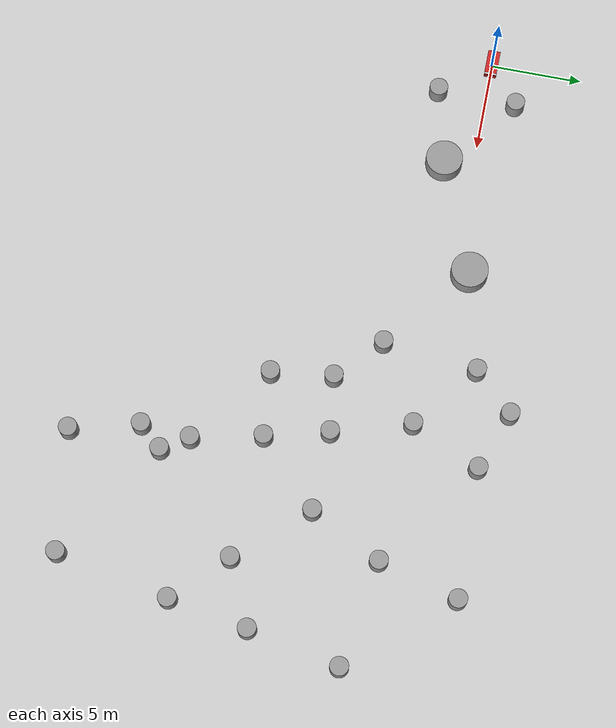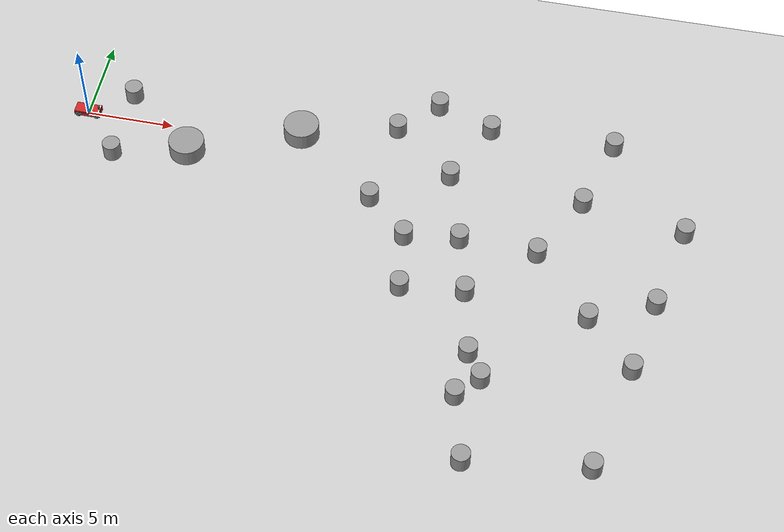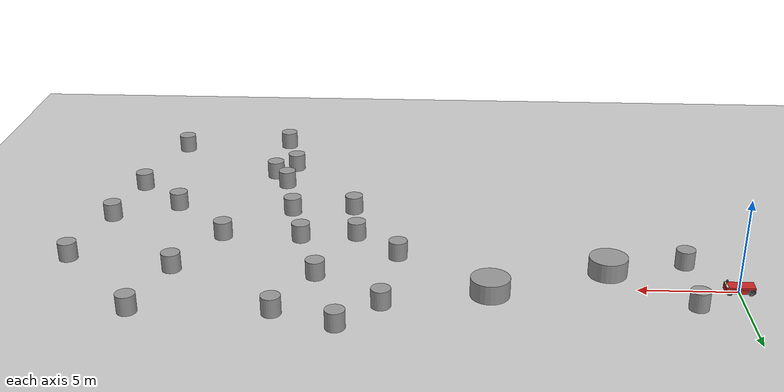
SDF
<sdf version="1.7">
 <world name="default">
  <light name="sun" type="directional">
   <pose>0 0 10 0 -0 0</pose>
   <diffuse>0.8 0.8 0.8 1</diffuse>
   <specular>0.2 0.2 0.2 1</specular>
   <attenuation>
    <range>1000</range>
    <constant>0.9</constant>
    <linear>0.01</linear>
    <quadratic>0.001</quadratic>
   </attenuation>
   <direction>-0.5 0.1 -0.9</direction>
   <spot><inner_angle>0</inner_angle><outer_angle>0</outer_angle><falloff>0</falloff></spot>
  </light>
  <model name="ground_plane">
   <static>1</static>
   <link name="link">
    <collision name="collision">
     <geometry><plane><normal>0 0 1</normal><size>100 100</size></plane></geometry>
     <surface><friction><ode><mu>100</mu><mu2>50</mu2></ode></friction></surface>
    </collision>
    <visual name="visual">
     <cast_shadows>0</cast_shadows>
     <geometry><plane><normal>0 0 1</normal><size>100 100</size></plane></geometry>
     <material>
      <script><uri>file://media/materials/scripts/gazebo.material</uri><name>Gazebo/Grey</name></script>
     </material>
    </visual>
   </link>
  </model>
  <gravity>0 0 -9.8</gravity>
  <magnetic_field>6e-06 2.3e-05 -4.2e-05</magnetic_field>
  <atmosphere type="adiabatic"/>
  <physics name="default_physics" default="0" type="ode">
   <max_step_size>0.001</max_step_size>
   <real_time_factor>1</real_time_factor>
   <real_time_update_rate>1000</real_time_update_rate>
  </physics>
  <scene><ambient>0.4 0.4 0.4 1</ambient><background>0.7 0.7 0.7 1</background><shadows>1</shadows></scene>
  <spherical_coordinates>
   <surface_model>EARTH_WGS84</surface_model>
   <latitude_deg>0</latitude_deg>
   <longitude_deg>0</longitude_deg>
   <elevation>0</elevation>
   <heading_deg>0</heading_deg>
  </spherical_coordinates>
  <model name="unit_cylinder_1">
   <pose>17.7165 2.15035 0.499997 2e-06 1e-06 0</pose>
   <link name="link">
    <inertial>
     <mass>1</mass>
     <inertia><ixx>0.145833</ixx><ixy>0</ixy><ixz>0</ixz><iyy>0.145833</iyy><iyz>0</iyz><izz>0.125</izz></inertia>
    </inertial>
    <collision name="collision">
     <geometry><cylinder><radius>0.5</radius><length>1</length></cylinder></geometry>
    </collision>
    <visual name="visual">
     <geometry><cylinder><radius>0.5</radius><length>1</length></cylinder></geometry>
     <material>
      <script><name>Gazebo/Grey</name><uri>file://media/materials/scripts/gazebo.material</uri></script>
     </material>
    </visual>
   </link>
  </model>
  <model name="unit_cylinder_1_clone">
   <pose>22.4882 -4.85282 0.499993 -0 -0 -0</pose>
   <link name="link">
    <inertial>
     <mass>1</mass>
     <inertia><ixx>0.145833</ixx><ixy>0</ixy><ixz>0</ixz><iyy>0.145833</iyy><iyz>0</iyz><izz>0.125</izz></inertia>
    </inertial>
    <collision name="collision">
     <geometry><cylinder><radius>0.5</radius><length>1</length></cylinder></geometry>
    </collision>
    <visual name="visual">
     <geometry><cylinder><radius>0.5</radius><length>1</length></cylinder></geometry>
     <material>
      <script><name>Gazebo/Grey</name><uri>file://media/materials/scripts/gazebo.material</uri></script>
     </material>
    </visual>
   </link>
  </model>
  <model name="unit_cylinder_1_clone_0">
   <pose>22.9425 3.1083 0.499997 3e-06 1e-06 -0</pose>
   <link name="link">
    <inertial>
     <mass>1</mass>
     <inertia><ixx>0.145833</ixx><ixy>0</ixy><ixz>0</ixz><iyy>0.145833</iyy><iyz>0</iyz><izz>0.125</izz></inertia>
    </inertial>
    <collision name="collision">
     <geometry><cylinder><radius>0.5</radius><length>1</length></cylinder></geometry>
    </collision>
    <visual name="visual">
     <geometry><cylinder><radius>0.5</radius><length>1</length></cylinder></geometry>
     <material>
      <script><name>Gazebo/Grey</name><uri>file://media/materials/scripts/gazebo.material</uri></script>
     </material>
    </visual>
   </link>
  </model>
  <model name="unit_cylinder_1_clone_1">
   <pose>2.2129 -2.66231 0.499991 -0 -0 -0</pose>
   <link name="link">
    <inertial>
     <mass>1</mass>
     <inertia><ixx>0.145833</ixx><ixy>0</ixy><ixz>0</ixz><iyy>0.145833</iyy><iyz>0</iyz><izz>0.125</izz></inertia>
    </inertial>
    <collision name="collision">
     <geometry><cylinder><radius>0.5</radius><length>1</length></cylinder></geometry>
    </collision>
    <visual name="visual">
     <geometry><cylinder><radius>0.5</radius><length>1</length></cylinder></geometry>
     <material>
      <script><name>Gazebo/Grey</name><uri>file://media/materials/scripts/gazebo.material</uri></script>
     </material>
    </visual>
   </link>
  </model>
  <model name="unit_cylinder_1_clone_2">
   <pose>2.29461 1.65197 0.499999 0 -0 3.07831</pose>
   <link name="link">
    <inertial>
     <mass>1</mass>
     <inertia><ixx>0.145833</ixx><ixy>0</ixy><ixz>0</ixz><iyy>0.145833</iyy><iyz>0</iyz><izz>0.125</izz></inertia>
    </inertial>
    <collision name="collision">
     <geometry><cylinder><radius>0.5</radius><length>1</length></cylinder></geometry>
    </collision>
    <visual name="visual">
     <geometry><cylinder><radius>0.5</radius><length>1</length></cylinder></geometry>
     <material>
      <script><name>Gazebo/Grey</name><uri>file://media/materials/scripts/gazebo.material</uri></script>
     </material>
    </visual>
   </link>
  </model>
  <model name="unit_cylinder_1_clone_3">
   <pose>17.12 -2.99322 0.499999 0 -0 0</pose>
   <link name="link">
    <inertial>
     <mass>1</mass>
     <inertia><ixx>0.145833</ixx><ixy>0</ixy><ixz>0</ixz><iyy>0.145833</iyy><iyz>0</iyz><izz>0.125</izz></inertia>
    </inertial>
    <collision name="collision">
     <geometry><cylinder><radius>0.5</radius><length>1</length></cylinder></geometry>
    </collision>
    <visual name="visual">
     <geometry><cylinder><radius>0.5</radius><length>1</length></cylinder></geometry>
     <material>
      <script><name>Gazebo/Grey</name><uri>file://media/materials/scripts/gazebo.material</uri></script>
     </material>
    </visual>
   </link>
  </model>
  <model name="unit_cylinder_1m">
   <link name="link">
    <inertial>
     <mass>1</mass>
     <inertia><ixx>0.145833</ixx><ixy>0</ixy><ixz>0</ixz><iyy>0.145833</iyy><iyz>0</iyz><izz>0.125</izz></inertia>
    </inertial>
    <visual name="visual">
     <geometry><cylinder><radius>1</radius><length>1</length></cylinder></geometry>
     <material>
      <script><name>Gazebo/Grey</name><uri>file://media/materials/scripts/gazebo.material</uri></script>
      <shader type="pixel"><normal_map>__default__</normal_map></shader>
      <ambient>0.3 0.3 0.3 1</ambient>
      <diffuse>0.7 0.7 0.7 1</diffuse>
      <specular>0.01 0.01 0.01 1</specular>
      <emissive>0 0 0 1</emissive>
     </material>
    </visual>
    <collision name="collision">
     <geometry><cylinder><radius>1</radius><length>1</length></cylinder></geometry>
     <surface>
      <friction>
       <ode><mu>1</mu><mu2>1</mu2><fdir1>0 0 0</fdir1><slip1>0</slip1><slip2>0</slip2></ode>
       <torsional>
        <coefficient>1</coefficient>
        <patch_radius>0</patch_radius>
        <surface_radius>0</surface_radius>
        <use_patch_radius>1</use_patch_radius>
        <ode><slip>0</slip></ode>
       </torsional>
      </friction>
      <bounce><restitution_coefficient>0</restitution_coefficient><threshold>1e+06</threshold></bounce>
      <contact>
       <collide_without_contact>0</collide_without_contact>
       <collide_without_contact_bitmask>1</collide_without_contact_bitmask>
       <collide_bitmask>1</collide_bitmask>
       <ode>
        <soft_cfm>0</soft_cfm>
        <soft_erp>0.2</soft_erp>
        <kp>1e+13</kp>
        <kd>1</kd>
        <max_vel>0.01</max_vel>
        <min_depth>0</min_depth>
       </ode>
       <bullet>
        <split_impulse>1</split_impulse>
        <split_impulse_penetration_threshold>-0.01</split_impulse_penetration_threshold>
        <soft_cfm>0</soft_cfm>
        <soft_erp>0.2</soft_erp>
        <kp>1e+13</kp>
        <kd>1</kd>
       </bullet>
      </contact>
     </surface>
    </collision>
   </link>
   <static>0</static>
   <pose>12.3833 0.825448 0.499995 -5e-06 5e-06 0.000117</pose>
  </model>
  <model name="unit_cylinder_1m_clone">
   <link name="link">
    <inertial>
     <mass>1</mass>
     <inertia><ixx>0.145833</ixx><ixy>0</ixy><ixz>0</ixz><iyy>0.145833</iyy><iyz>0</iyz><izz>0.125</izz></inertia>
    </inertial>
    <visual name="visual">
     <geometry><cylinder><radius>1</radius><length>1</length></cylinder></geometry>
     <material>
      <script><name>Gazebo/Grey</name><uri>file://media/materials/scripts/gazebo.material</uri></script>
      <shader type="pixel"><normal_map>__default__</normal_map></shader>
      <ambient>0.3 0.3 0.3 1</ambient>
      <diffuse>0.7 0.7 0.7 1</diffuse>
      <specular>0.01 0.01 0.01 1</specular>
      <emissive>0 0 0 1</emissive>
     </material>
    </visual>
    <collision name="collision">
     <geometry><cylinder><radius>1</radius><length>1</length></cylinder></geometry>
     <surface>
      <friction>
       <ode><mu>1</mu><mu2>1</mu2><fdir1>0 0 0</fdir1><slip1>0</slip1><slip2>0</slip2></ode>
       <torsional>
        <coefficient>1</coefficient>
        <patch_radius>0</patch_radius>
        <surface_radius>0</surface_radius>
        <use_patch_radius>1</use_patch_radius>
        <ode><slip>0</slip></ode>
       </torsional>
      </friction>
      <bounce><restitution_coefficient>0</restitution_coefficient><threshold>1e+06</threshold></bounce>
      <contact>
       <collide_without_contact>0</collide_without_contact>
       <collide_without_contact_bitmask>1</collide_without_contact_bitmask>
       <collide_bitmask>1</collide_bitmask>
       <ode>
        <soft_cfm>0</soft_cfm>
        <soft_erp>0.2</soft_erp>
        <kp>1e+13</kp>
        <kd>1</kd>
        <max_vel>0.01</max_vel>
        <min_depth>0</min_depth>
       </ode>
       <bullet>
        <split_impulse>1</split_impulse>
        <split_impulse_penetration_threshold>-0.01</split_impulse_penetration_threshold>
        <soft_cfm>0</soft_cfm>
        <soft_erp>0.2</soft_erp>
        <kp>1e+13</kp>
        <kd>1</kd>
       </bullet>
      </contact>
     </surface>
    </collision>
   </link>
   <static>0</static>
   <pose>6.30645 -1.63267 0.499994 6e-06 -7e-06 0.065546</pose>
  </model>
  <model name="mobile_base">
   <link name="simulation_car_center">
    <inertial>
     <pose>0.010175 0 0.010123 0 -0 0</pose>
     <mass>973</mass>
     <inertia>
      <ixx>32.4325</ixx>
      <ixy>0.01</ixy>
      <ixz>-6.39078</ixz>
      <iyy>114.856</iyy>
      <iyz>0</iyz>
      <izz>124.473</izz>
     </inertia>
    </inertial>
    <collision name="simulation_car_center_fixed_joint_lump__base_1_collision">
     <pose>0 0 0.215 0 -0 0</pose>
     <geometry><box><size>1.3 0.4 0.23</size></box></geometry>
    </collision>
    <collision name="simulation_car_center_fixed_joint_lump__gazebo_camera_link_collision_1">
     <pose>0.66 0 0.7 3.14159 1.57079 3.14159</pose>
     <geometry><cylinder><length>0.08</length><radius>0.015</radius></cylinder></geometry>
    </collision>
    <collision name="simulation_car_center_fixed_joint_lump__rsliadr_middle_collision_2">
     <pose>0.66 0 0.635 0 -0 0</pose>
     <geometry><cylinder><length>0.06</length><radius>0.06</radius></cylinder></geometry>
    </collision>
    <collision name="simulation_car_center_fixed_joint_lump__lidar_top_collision_3">
     <pose>0.66 0 0.67 0 -0 0</pose>
     <geometry><cylinder><length>0.01</length><radius>0.06</radius></cylinder></geometry>
    </collision>
    <collision name="simulation_car_center_fixed_joint_lump__lidar_down_collision_4">
     <pose>0.66 0 0.6 0 -0 0</pose>
     <geometry><cylinder><length>0.01</length><radius>0.06</radius></cylinder></geometry>
    </collision>
    <visual name="simulation_car_center_visual">
     <pose>0 0 0.215 0 -0 0</pose>
     <geometry><box><size>0.68 0.67 0.23</size></box></geometry>
     <material>
      <script><name>Gazebo/Red</name><uri>file://media/materials/scripts/gazebo.material</uri></script>
     </material>
    </visual>
    <visual name="simulation_car_center_visual_1">
     <pose>0.53 0 0.215 0 -0 0</pose>
     <geometry><box><size>0.38 0.35 0.23</size></box></geometry>
     <material>
      <script><name>Gazebo/Red</name><uri>file://media/materials/scripts/gazebo.material</uri></script>
     </material>
    </visual>
    <visual name="simulation_car_center_visual_2">
     <pose>-0.53 0 0.215 0 -0 0</pose>
     <geometry><box><size>0.38 0.35 0.23</size></box></geometry>
     <material>
      <script><name>Gazebo/Red</name><uri>file://media/materials/scripts/gazebo.material</uri></script>
     </material>
    </visual>
    <visual name="simulation_car_center_visual_3">
     <pose>-0.725 0 0.215 0 -0 0</pose>
     <geometry><box><size>0.01 0.67 0.23</size></box></geometry>
     <material>
      <script><name>Gazebo/Red</name><uri>file://media/materials/scripts/gazebo.material</uri></script>
     </material>
    </visual>
    <visual name="simulation_car_center_visual_4">
     <pose>-0.725 0 0.215 0 -0 0</pose>
     <geometry><box><size>0.01 0.67 0.23</size></box></geometry>
     <material>
      <script><name>Gazebo/Red</name><uri>file://media/materials/scripts/gazebo.material</uri></script>
     </material>
    </visual>
    <visual name="simulation_car_center_visual_5">
     <pose>0 0 0.38 0 -0 0</pose>
     <geometry><box><size>1.46 0.67 0.1</size></box></geometry>
     <material>
      <script><name>Gazebo/Red</name><uri>file://media/materials/scripts/gazebo.material</uri></script>
     </material>
    </visual>
    <visual name="simulation_car_center_visual_6">
     <pose>0.725 0 0.215 0 -0 0</pose>
     <geometry><box><size>0.01 0.67 0.23</size></box></geometry>
     <material>
      <script><name>Gazebo/Red</name><uri>file://media/materials/scripts/gazebo.material</uri></script>
     </material>
    </visual>
    <visual name="simulation_car_center_fixed_joint_lump__gazebo_camera_link_visual_7">
     <pose>0.66 0 0.7 3.14159 1.57079 3.14159</pose>
     <geometry><cylinder><length>0.08</length><radius>0.015</radius></cylinder></geometry>
     <material>
      <script><name>Gazebo/DarkGrey</name><uri>file://media/materials/scripts/gazebo.material</uri></script>
     </material>
    </visual>
    <visual name="simulation_car_center_fixed_joint_lump__gazebo_lidar_visual_8">
     <pose>0.66 0 0.635 0 -0 0</pose>
     <geometry><cylinder><length>0.06</length><radius>0.06</radius></cylinder></geometry>
     <material>
      <script><name>Gazebo/Blue</name><uri>file://media/materials/scripts/gazebo.material</uri></script>
     </material>
    </visual>
    <visual name="simulation_car_center_fixed_joint_lump__lidar_top_base_visual_9">
     <pose>0.66 0 0.67 0 -0 0</pose>
     <geometry><cylinder><length>0.01</length><radius>0.06</radius></cylinder></geometry>
     <material>
      <script><name>Gazebo/Grey</name><uri>file://media/materials/scripts/gazebo.material</uri></script>
     </material>
    </visual>
    <visual name="simulation_car_center_fixed_joint_lump__lidar_top_base_visual_10">
     <pose>0.66 0 0.6 0 -0 0</pose>
     <geometry><cylinder><length>0.01</length><radius>0.06</radius></cylinder></geometry>
     <material>
      <script><name>Gazebo/Grey</name><uri>file://media/materials/scripts/gazebo.material</uri></script>
     </material>
    </visual>
    <visual name="simulation_car_center_fixed_joint_lump__sensor_link_visual_11">
     <pose>0.66 0 0.57 0 -0 0</pose>
     <geometry><box><size>0.05 0.06 0.28</size></box></geometry>
     <material>
      <script><name>Gazebo/Yellow</name><uri>file://media/materials/scripts/gazebo.material</uri></script>
     </material>
    </visual>
    <visual name="simulation_car_center_fixed_joint_lump__show_front_link_visual_12">
     <pose>0.66 0 0.44 0 -0 0</pose>
     <geometry><box><size>0.1 0.67 0.02</size></box></geometry>
     <material>
      <script><name>Gazebo/White</name><uri>file://media/materials/scripts/gazebo.material</uri></script>
     </material>
    </visual>
    <sensor name="gazebo_ros_head_hokuyo_sensor" type="gpu_ray">
     <visualize>0</visualize>
     <update_rate>20</update_rate>
     <ray>
      <scan>
       <horizontal>
        <samples>2880</samples>
        <resolution>1</resolution>
        <min_angle>-3.14159</min_angle>
        <max_angle>3.14159</max_angle>
       </horizontal>
       <vertical>
        <samples>32</samples>
        <resolution>1</resolution>
        <min_angle>-0.436332</min_angle>
        <max_angle>0.261799</max_angle>
       </vertical>
      </scan>
      <range><min>0.1</min><max>130</max><resolution>0.001</resolution></range>
      <noise><type>gaussian</type><mean>0</mean><stddev>0</stddev></noise>
     </ray>
     <plugin name="gazebo_ros_head_hokuyo_controller" filename="libgazebo_ros_velodyne_gpu_laser.so">
      <topicName>velodyne_points</topicName>
      <frameName>velodyne</frameName>
      <robotNamespace>/</robotNamespace>
     </plugin>
     <pose>0.66 0 0.635 0 -0 0</pose>
    </sensor>
   </link>
   <joint name="front_left_steering_joint" type="revolute">
    <pose relative_to="simulation_car_center">0.53 0.31 0.16 0 -0 0</pose>
    <parent>simulation_car_center</parent>
    <child>front_left_steering_link</child>
    <axis>
     <xyz>0 0 1</xyz>
     <limit><lower>-0.8</lower><upper>0.8</upper><effort>1e+06</effort><velocity>10000</velocity></limit>
     <dynamics>
      <damping>10</damping>
      <friction>0</friction>
      <spring_reference>0</spring_reference>
      <spring_stiffness>0</spring_stiffness>
     </dynamics>
    </axis>
   </joint>
   <link name="front_left_steering_link">
    <pose relative_to="front_left_steering_joint">0 0 0 0 -0 0</pose>
    <inertial>
     <mass>5</mass>
     <inertia><ixx>0</ixx><ixy>0</ixy><ixz>0</ixz><iyy>0</iyy><iyz>0</iyz><izz>0</izz></inertia>
    </inertial>
    <visual name="front_left_steering_link_visual">
     <pose>0 0 0 1.5708 -0 0</pose>
     <geometry><cylinder><length>0.01</length><radius>0.05</radius></cylinder></geometry>
    </visual>
   </link>
   <joint name="front_left_wheel_joint" type="revolute">
    <pose relative_to="front_left_steering_link">0 0 0 0 -0 0</pose>
    <parent>front_left_steering_link</parent>
    <child>front_left_wheel_link</child>
    <axis>
     <xyz>0 1 0</xyz>
     <limit><effort>1e+06</effort><velocity>10000</velocity><lower>-1e+16</lower><upper>1e+16</upper></limit>
     <dynamics>
      <damping>0.1</damping>
      <friction>0</friction>
      <spring_reference>0</spring_reference>
      <spring_stiffness>0</spring_stiffness>
     </dynamics>
    </axis>
   </joint>
   <link name="front_left_wheel_link">
    <pose relative_to="front_left_wheel_joint">0 0 0 0 -0 0</pose>
    <inertial>
     <mass>10</mass>
     <inertia><ixx>0</ixx><ixy>0</ixy><ixz>0</ixz><iyy>0</iyy><iyz>0</iyz><izz>0</izz></inertia>
    </inertial>
    <collision name="front_left_wheel_link_collision">
     <pose>0 0 0 1.5708 -0 0</pose>
     <geometry><cylinder><length>0.05</length><radius>0.16</radius></cylinder></geometry>
     <surface>
      <contact><ode><kp>1e+08</kp><kd>1</kd><max_vel>100</max_vel><min_depth>0</min_depth></ode></contact>
      <friction><ode><mu>1e+07</mu><mu2>1e+07</mu2></ode></friction>
     </surface>
    </collision>
    <visual name="front_left_wheel_link_visual">
     <pose>0 0 0 0 -0 1.5708</pose>
     <geometry>
      <mesh>
       <scale>1 1 1</scale>
       <uri>/home/zwh/plan/zwh/op_plannersrc/src/trajectory_planning/simulation_env/car_model/meshes/wheel.dae</uri>
      </mesh>
     </geometry>
    </visual>
   </link>
   <joint name="front_right_steering_joint" type="revolute">
    <pose relative_to="simulation_car_center">0.53 -0.31 0.16 0 -0 0</pose>
    <parent>simulation_car_center</parent>
    <child>front_right_steering_link</child>
    <axis>
     <xyz>0 0 1</xyz>
     <limit><lower>-0.8</lower><upper>0.8</upper><effort>1e+06</effort><velocity>10000</velocity></limit>
     <dynamics>
      <damping>10</damping>
      <friction>0</friction>
      <spring_reference>0</spring_reference>
      <spring_stiffness>0</spring_stiffness>
     </dynamics>
    </axis>
   </joint>
   <link name="front_right_steering_link">
    <pose relative_to="front_right_steering_joint">0 0 0 0 -0 0</pose>
    <inertial>
     <mass>5</mass>
     <inertia><ixx>0</ixx><ixy>0</ixy><ixz>0</ixz><iyy>0</iyy><iyz>0</iyz><izz>0</izz></inertia>
    </inertial>
    <visual name="front_right_steering_link_visual">
     <pose>0 0 0 1.5708 -0 0</pose>
     <geometry><cylinder><length>0.01</length><radius>0.05</radius></cylinder></geometry>
    </visual>
   </link>
   <joint name="front_right_wheel_joint" type="revolute">
    <pose relative_to="front_right_steering_link">0 0 0 0 -0 0</pose>
    <parent>front_right_steering_link</parent>
    <child>front_right_wheel_link</child>
    <axis>
     <xyz>0 1 0</xyz>
     <limit><effort>1e+06</effort><velocity>10000</velocity><lower>-1e+16</lower><upper>1e+16</upper></limit>
     <dynamics>
      <damping>0.1</damping>
      <friction>0</friction>
      <spring_reference>0</spring_reference>
      <spring_stiffness>0</spring_stiffness>
     </dynamics>
    </axis>
   </joint>
   <link name="front_right_wheel_link">
    <pose relative_to="front_right_wheel_joint">0 0 0 0 -0 0</pose>
    <inertial>
     <mass>10</mass>
     <inertia><ixx>0</ixx><ixy>0</ixy><ixz>0</ixz><iyy>0</iyy><iyz>0</iyz><izz>0</izz></inertia>
    </inertial>
    <collision name="front_right_wheel_link_collision">
     <pose>0 0 0 1.5708 -0 0</pose>
     <geometry><cylinder><length>0.05</length><radius>0.16</radius></cylinder></geometry>
     <surface>
      <contact><ode><kp>1e+08</kp><kd>1</kd><max_vel>100</max_vel><min_depth>0</min_depth></ode></contact>
      <friction><ode><mu>1e+07</mu><mu2>1e+07</mu2></ode></friction>
     </surface>
    </collision>
    <visual name="front_right_wheel_link_visual">
     <pose>0 0 0 0 0 -1.5708</pose>
     <geometry>
      <mesh>
       <scale>1 1 1</scale>
       <uri>/home/zwh/plan/zwh/op_plannersrc/src/trajectory_planning/simulation_env/car_model/meshes/wheel.dae</uri>
      </mesh>
     </geometry>
    </visual>
   </link>
   <joint name="rear_left_steering_joint" type="revolute">
    <pose relative_to="simulation_car_center">-0.53 0.31 0.16 0 -0 0</pose>
    <parent>simulation_car_center</parent>
    <child>rear_left_steering_link</child>
    <axis>
     <xyz>0 0 1</xyz>
     <limit><lower>-0.8</lower><upper>0.8</upper><effort>1e+06</effort><velocity>10000</velocity></limit>
     <dynamics>
      <damping>10</damping>
      <friction>0</friction>
      <spring_reference>0</spring_reference>
      <spring_stiffness>0</spring_stiffness>
     </dynamics>
    </axis>
   </joint>
   <link name="rear_left_steering_link">
    <pose relative_to="rear_left_steering_joint">0 0 0 0 -0 0</pose>
    <inertial>
     <mass>5</mass>
     <inertia><ixx>0</ixx><ixy>0</ixy><ixz>0</ixz><iyy>0</iyy><iyz>0</iyz><izz>0</izz></inertia>
    </inertial>
    <visual name="rear_left_steering_link_visual">
     <pose>0 0 0 1.5708 -0 0</pose>
     <geometry><cylinder><length>0.01</length><radius>0.05</radius></cylinder></geometry>
    </visual>
   </link>
   <joint name="rear_left_wheel_joint" type="revolute">
    <pose relative_to="rear_left_steering_link">0 0 0 0 -0 0</pose>
    <parent>rear_left_steering_link</parent>
    <child>rear_left_wheel_link</child>
    <axis>
     <xyz>0 1 0</xyz>
     <limit><effort>1e+06</effort><velocity>10000</velocity><lower>-1e+16</lower><upper>1e+16</upper></limit>
     <dynamics>
      <damping>0.1</damping>
      <friction>0</friction>
      <spring_reference>0</spring_reference>
      <spring_stiffness>0</spring_stiffness>
     </dynamics>
    </axis>
   </joint>
   <link name="rear_left_wheel_link">
    <pose relative_to="rear_left_wheel_joint">0 0 0 0 -0 0</pose>
    <inertial>
     <mass>10</mass>
     <inertia><ixx>0</ixx><ixy>0</ixy><ixz>0</ixz><iyy>0</iyy><iyz>0</iyz><izz>0</izz></inertia>
    </inertial>
    <collision name="rear_left_wheel_link_collision">
     <pose>0 0 0 1.5708 -0 0</pose>
     <geometry><cylinder><length>0.05</length><radius>0.16</radius></cylinder></geometry>
     <surface>
      <contact><ode><kp>1e+08</kp><kd>1</kd><max_vel>100</max_vel><min_depth>0</min_depth></ode></contact>
      <friction><ode><mu>1e+07</mu><mu2>1e+07</mu2></ode></friction>
     </surface>
    </collision>
    <visual name="rear_left_wheel_link_visual">
     <pose>0 0 0 0 -0 1.5708</pose>
     <geometry>
      <mesh>
       <scale>1 1 1</scale>
       <uri>/home/zwh/plan/zwh/op_plannersrc/src/trajectory_planning/simulation_env/car_model/meshes/wheel.dae</uri>
      </mesh>
     </geometry>
    </visual>
   </link>
   <joint name="rear_right_steering_joint" type="revolute">
    <pose relative_to="simulation_car_center">-0.53 -0.31 0.16 0 -0 0</pose>
    <parent>simulation_car_center</parent>
    <child>rear_right_steering_link</child>
    <axis>
     <xyz>0 0 1</xyz>
     <limit><lower>-0.8</lower><upper>0.8</upper><effort>1e+06</effort><velocity>10000</velocity></limit>
     <dynamics>
      <damping>10</damping>
      <friction>0</friction>
      <spring_reference>0</spring_reference>
      <spring_stiffness>0</spring_stiffness>
     </dynamics>
    </axis>
   </joint>
   <link name="rear_right_steering_link">
    <pose relative_to="rear_right_steering_joint">0 0 0 0 -0 0</pose>
    <inertial>
     <mass>5</mass>
     <inertia><ixx>0</ixx><ixy>0</ixy><ixz>0</ixz><iyy>0</iyy><iyz>0</iyz><izz>0</izz></inertia>
    </inertial>
    <visual name="rear_right_steering_link_visual">
     <pose>0 0 0 1.5708 -0 0</pose>
     <geometry><cylinder><length>0.01</length><radius>0.05</radius></cylinder></geometry>
    </visual>
   </link>
   <joint name="rear_right_wheel_joint" type="revolute">
    <pose relative_to="rear_right_steering_link">0 0 0 0 -0 0</pose>
    <parent>rear_right_steering_link</parent>
    <child>rear_right_wheel_link</child>
    <axis>
     <xyz>0 1 0</xyz>
     <limit><effort>1e+06</effort><velocity>10000</velocity><lower>-1e+16</lower><upper>1e+16</upper></limit>
     <dynamics>
      <damping>0.1</damping>
      <friction>0</friction>
      <spring_reference>0</spring_reference>
      <spring_stiffness>0</spring_stiffness>
     </dynamics>
    </axis>
   </joint>
   <link name="rear_right_wheel_link">
    <pose relative_to="rear_right_wheel_joint">0 0 0 0 -0 0</pose>
    <inertial>
     <mass>10</mass>
     <inertia><ixx>0</ixx><ixy>0</ixy><ixz>0</ixz><iyy>0</iyy><iyz>0</iyz><izz>0</izz></inertia>
    </inertial>
    <collision name="rear_right_wheel_link_collision">
     <pose>0 0 0 1.5708 -0 0</pose>
     <geometry><cylinder><length>0.05</length><radius>0.16</radius></cylinder></geometry>
     <surface>
      <contact><ode><kp>1e+08</kp><kd>1</kd><max_vel>100</max_vel><min_depth>0</min_depth></ode></contact>
      <friction><ode><mu>1e+07</mu><mu2>1e+07</mu2></ode></friction>
     </surface>
    </collision>
    <visual name="rear_right_wheel_link_visual">
     <pose>0 0 0 0 0 -1.5708</pose>
     <geometry>
      <mesh>
       <scale>1 1 1</scale>
       <uri>/home/zwh/plan/zwh/op_plannersrc/src/trajectory_planning/simulation_env/car_model/meshes/wheel.dae</uri>
      </mesh>
     </geometry>
    </visual>
   </link>
   <plugin name="gazebo_ros_control" filename="libgazebo_ros_control.so">
    <robotNamespace>/mobile_base</robotNamespace>
    <robotParam>robot_description</robotParam>
    <robotSimType>gazebo_ros_control/DefaultRobotHWSim</robotSimType>
    <legacyModeNS>1</legacyModeNS>
   </plugin>
   <plugin name="joint_state_publisher" filename="libgazebo_ros_joint_state_publisher.so">
    <jointName>rear_left_wheel_joint, rear_right_wheel_joint, front_left_steering_joint, front_right_steering_joint, front_right_wheel_joint, front_left_wheel_joint, rear_right_steering_joint, rear_left_steering_joint</jointName>
    <updateRate>50.0</updateRate>
    <robotNamespace>/mobile_base</robotNamespace>
    <alwaysOn>1</alwaysOn>
    <legacyModeNS>1</legacyModeNS>
   </plugin>
   <frame name="camera_joint" attached_to="simulation_car_center"><pose>0.66 0 0.7 0 -0 0</pose></frame>
   <frame name="gazebo_camera_link" attached_to="camera_joint"/>
   <frame name="inertial_joint" attached_to="simulation_car_center"/>
   <frame name="main_mass" attached_to="inertial_joint"/>
   <frame name="lidar_top_base_joint" attached_to="gazebo_lidar"/>
   <frame name="lidar_top_base" attached_to="lidar_top_base_joint"/>
   <frame name="lidar_joint" attached_to="simulation_car_center"><pose>0.66 0 0.635 0 -0 0</pose></frame>
   <frame name="gazebo_lidar" attached_to="lidar_joint"/>
   <frame name="sensor_base_joint" attached_to="simulation_car_center"/>
   <frame name="sensor_link" attached_to="sensor_base_joint"/>
   <frame name="show_front_joint" attached_to="simulation_car_center"/>
   <frame name="show_front_link" attached_to="show_front_joint"/>
   <pose>0.005003 -0.000756 -1.7e-05 -1e-06 0 -0.003925</pose>
  </model>
  <model name="unit_cylinder">
   <pose>21.2377 -0.648915 0.499994 -3e-06 -1e-06 -0</pose>
   <link name="link">
    <inertial>
     <mass>1</mass>
     <inertia><ixx>0.145833</ixx><ixy>0</ixy><ixz>0</ixz><iyy>0.145833</iyy><iyz>0</iyz><izz>0.125</izz></inertia>
    </inertial>
    <collision name="collision">
     <geometry><cylinder><radius>0.5</radius><length>1</length></cylinder></geometry>
    </collision>
    <visual name="visual">
     <geometry><cylinder><radius>0.5</radius><length>1</length></cylinder></geometry>
     <material>
      <script><name>Gazebo/Grey</name><uri>file://media/materials/scripts/gazebo.material</uri></script>
     </material>
    </visual>
   </link>
  </model>
  <model name="unit_cylinder_0">
   <pose>29.9312 3.25197 0.499992 -0 -0 -0</pose>
   <link name="link">
    <inertial>
     <mass>1</mass>
     <inertia><ixx>0.145833</ixx><ixy>0</ixy><ixz>0</ixz><iyy>0.145833</iyy><iyz>0</iyz><izz>0.125</izz></inertia>
    </inertial>
    <collision name="collision">
     <geometry><cylinder><radius>0.5</radius><length>1</length></cylinder></geometry>
    </collision>
    <visual name="visual">
     <geometry><cylinder><radius>0.5</radius><length>1</length></cylinder></geometry>
     <material>
      <script><name>Gazebo/Grey</name><uri>file://media/materials/scripts/gazebo.material</uri></script>
     </material>
    </visual>
   </link>
  </model>
  <model name="unit_cylinder_2">
   <pose>30.014 -8.64443 0.499993 -4e-06 -1e-06 0</pose>
   <link name="link">
    <inertial>
     <mass>1</mass>
     <inertia><ixx>0.145833</ixx><ixy>0</ixy><ixz>0</ixz><iyy>0.145833</iyy><iyz>0</iyz><izz>0.125</izz></inertia>
    </inertial>
    <collision name="collision">
     <geometry><cylinder><radius>0.5</radius><length>1</length></cylinder></geometry>
    </collision>
    <visual name="visual">
     <geometry><cylinder><radius>0.5</radius><length>1</length></cylinder></geometry>
     <material>
      <script><name>Gazebo/Grey</name><uri>file://media/materials/scripts/gazebo.material</uri></script>
     </material>
    </visual>
   </link>
  </model>
  <model name="unit_cylinder_3">
   <pose>32.6853 -11.3644 0.499993 -3e-06 -1e-06 -0</pose>
   <link name="link">
    <inertial>
     <mass>1</mass>
     <inertia><ixx>0.145833</ixx><ixy>0</ixy><ixz>0</ixz><iyy>0.145833</iyy><iyz>0</iyz><izz>0.125</izz></inertia>
    </inertial>
    <collision name="collision">
     <geometry><cylinder><radius>0.5</radius><length>1</length></cylinder></geometry>
    </collision>
    <visual name="visual">
     <geometry><cylinder><radius>0.5</radius><length>1</length></cylinder></geometry>
     <material>
      <script><name>Gazebo/Grey</name><uri>file://media/materials/scripts/gazebo.material</uri></script>
     </material>
    </visual>
   </link>
  </model>
  <model name="unit_cylinder_4">
   <pose>25.079 -13.4509 0.499994 -4e-06 -3e-06 -0</pose>
   <link name="link">
    <inertial>
     <mass>1</mass>
     <inertia><ixx>0.145833</ixx><ixy>0</ixy><ixz>0</ixz><iyy>0.145833</iyy><iyz>0</iyz><izz>0.125</izz></inertia>
    </inertial>
    <collision name="collision">
     <geometry><cylinder><radius>0.5</radius><length>1</length></cylinder></geometry>
    </collision>
    <visual name="visual">
     <geometry><cylinder><radius>0.5</radius><length>1</length></cylinder></geometry>
     <material>
      <script><name>Gazebo/Grey</name><uri>file://media/materials/scripts/gazebo.material</uri></script>
     </material>
    </visual>
   </link>
  </model>
  <model name="unit_cylinder_5">
   <pose>31.4217 -17.5252 0.499998 3e-06 -2e-06 0</pose>
   <link name="link">
    <inertial>
     <mass>1</mass>
     <inertia><ixx>0.145833</ixx><ixy>0</ixy><ixz>0</ixz><iyy>0.145833</iyy><iyz>0</iyz><izz>0.125</izz></inertia>
    </inertial>
    <collision name="collision">
     <geometry><cylinder><radius>0.5</radius><length>1</length></cylinder></geometry>
    </collision>
    <visual name="visual">
     <geometry><cylinder><radius>0.5</radius><length>1</length></cylinder></geometry>
     <material>
      <script><name>Gazebo/Grey</name><uri>file://media/materials/scripts/gazebo.material</uri></script>
     </material>
    </visual>
   </link>
  </model>
  <model name="unit_cylinder_6">
   <pose>23.3713 -8.23906 0.499994 4e-06 -2e-06 0</pose>
   <link name="link">
    <inertial>
     <mass>1</mass>
     <inertia><ixx>0.145833</ixx><ixy>0</ixy><ixz>0</ixz><iyy>0.145833</iyy><iyz>0</iyz><izz>0.125</izz></inertia>
    </inertial>
    <collision name="collision">
     <geometry><cylinder><radius>0.5</radius><length>1</length></cylinder></geometry>
    </collision>
    <visual name="visual">
     <geometry><cylinder><radius>0.5</radius><length>1</length></cylinder></geometry>
     <material>
      <script><name>Gazebo/Grey</name><uri>file://media/materials/scripts/gazebo.material</uri></script>
     </material>
    </visual>
   </link>
  </model>
  <model name="unit_cylinder_7">
   <pose>24.1934 -12.0138 0.499994 4e-06 -2e-06 0</pose>
   <link name="link">
    <inertial>
     <mass>1</mass>
     <inertia><ixx>0.145833</ixx><ixy>0</ixy><ixz>0</ixz><iyy>0.145833</iyy><iyz>0</iyz><izz>0.125</izz></inertia>
    </inertial>
    <collision name="collision">
     <geometry><cylinder><radius>0.5</radius><length>1</length></cylinder></geometry>
    </collision>
    <visual name="visual">
     <geometry><cylinder><radius>0.5</radius><length>1</length></cylinder></geometry>
     <material>
      <script><name>Gazebo/Grey</name><uri>file://media/materials/scripts/gazebo.material</uri></script>
     </material>
    </visual>
   </link>
  </model>
  <model name="unit_cylinder_8">
   <pose>23.9566 -14.6869 0.499994 4e-06 -2e-06 0</pose>
   <link name="link">
    <inertial>
     <mass>1</mass>
     <inertia><ixx>0.145833</ixx><ixy>0</ixy><ixz>0</ixz><iyy>0.145833</iyy><iyz>0</iyz><izz>0.125</izz></inertia>
    </inertial>
    <collision name="collision">
     <geometry><cylinder><radius>0.5</radius><length>1</length></cylinder></geometry>
    </collision>
    <visual name="visual">
     <geometry><cylinder><radius>0.5</radius><length>1</length></cylinder></geometry>
     <material>
      <script><name>Gazebo/Grey</name><uri>file://media/materials/scripts/gazebo.material</uri></script>
     </material>
    </visual>
   </link>
  </model>
  <model name="unit_cylinder_9">
   <pose>24.9131 -18.3887 0.499992 -3e-06 -4e-06 -0</pose>
   <link name="link">
    <inertial>
     <mass>1</mass>
     <inertia><ixx>0.145833</ixx><ixy>0</ixy><ixz>0</ixz><iyy>0.145833</iyy><iyz>0</iyz><izz>0.125</izz></inertia>
    </inertial>
    <collision name="collision">
     <geometry><cylinder><radius>0.5</radius><length>1</length></cylinder></geometry>
    </collision>
    <visual name="visual">
     <geometry><cylinder><radius>0.5</radius><length>1</length></cylinder></geometry>
     <material>
      <script><name>Gazebo/Grey</name><uri>file://media/materials/scripts/gazebo.material</uri></script>
     </material>
    </visual>
   </link>
  </model>
  <model name="unit_cylinder_10">
   <pose>19.749 4.27297 0.499994 3e-06 -3e-06 0</pose>
   <link name="link">
    <inertial>
     <mass>1</mass>
     <inertia><ixx>0.145833</ixx><ixy>0</ixy><ixz>0</ixz><iyy>0.145833</iyy><iyz>0</iyz><izz>0.125</izz></inertia>
    </inertial>
    <collision name="collision">
     <geometry><cylinder><radius>0.5</radius><length>1</length></cylinder></geometry>
    </collision>
    <visual name="visual">
     <geometry><cylinder><radius>0.5</radius><length>1</length></cylinder></geometry>
     <material>
      <script><name>Gazebo/Grey</name><uri>file://media/materials/scripts/gazebo.material</uri></script>
     </material>
    </visual>
   </link>
  </model>
  <model name="unit_cylinder_11">
   <pose>19.4708 -5.23206 0.499999 0 0 -6e-06</pose>
   <link name="link">
    <inertial>
     <mass>1</mass>
     <inertia><ixx>0.145833</ixx><ixy>0</ixy><ixz>0</ixz><iyy>0.145833</iyy><iyz>0</iyz><izz>0.125</izz></inertia>
    </inertial>
    <collision name="collision">
     <geometry><cylinder><radius>0.5</radius><length>1</length></cylinder></geometry>
    </collision>
    <visual name="visual">
     <geometry><cylinder><radius>0.5</radius><length>1</length></cylinder></geometry>
     <material>
      <script><name>Gazebo/Grey</name><uri>file://media/materials/scripts/gazebo.material</uri></script>
     </material>
    </visual>
   </link>
  </model>
  <model name="unit_cylinder_12">
   <pose>26.772 -4.97105 0.499991 -0 -0 -0.037378</pose>
   <link name="link">
    <inertial>
     <mass>1</mass>
     <inertia><ixx>0.145833</ixx><ixy>0</ixy><ixz>0</ixz><iyy>0.145833</iyy><iyz>0</iyz><izz>0.125</izz></inertia>
    </inertial>
    <collision name="collision">
     <geometry><cylinder><radius>0.5</radius><length>1</length></cylinder></geometry>
    </collision>
    <visual name="visual">
     <geometry><cylinder><radius>0.5</radius><length>1</length></cylinder></geometry>
     <material>
      <script><name>Gazebo/Grey</name><uri>file://media/materials/scripts/gazebo.material</uri></script>
     </material>
    </visual>
   </link>
  </model>
  <model name="unit_cylinder_13">
   <pose>33.4422 -7.04943 0.499997 4e-06 2e-06 -0</pose>
   <link name="link">
    <inertial>
     <mass>1</mass>
     <inertia><ixx>0.145833</ixx><ixy>0</ixy><ixz>0</ixz><iyy>0.145833</iyy><iyz>0</iyz><izz>0.125</izz></inertia>
    </inertial>
    <collision name="collision">
     <geometry><cylinder><radius>0.5</radius><length>1</length></cylinder></geometry>
    </collision>
    <visual name="visual">
     <geometry><cylinder><radius>0.5</radius><length>1</length></cylinder></geometry>
     <material>
      <script><name>Gazebo/Grey</name><uri>file://media/materials/scripts/gazebo.material</uri></script>
     </material>
    </visual>
   </link>
  </model>
  <model name="unit_cylinder_14">
   <pose>28.7416 -1.09225 0.499994 -4e-06 -3e-06 -0</pose>
   <link name="link">
    <inertial>
     <mass>1</mass>
     <inertia><ixx>0.145833</ixx><ixy>0</ixy><ixz>0</ixz><iyy>0.145833</iyy><iyz>0</iyz><izz>0.125</izz></inertia>
    </inertial>
    <collision name="collision">
     <geometry><cylinder><radius>0.5</radius><length>1</length></cylinder></geometry>
    </collision>
    <visual name="visual">
     <geometry><cylinder><radius>0.5</radius><length>1</length></cylinder></geometry>
     <material>
      <script><name>Gazebo/Grey</name><uri>file://media/materials/scripts/gazebo.material</uri></script>
     </material>
    </visual>
   </link>
  </model>
  <model name="unit_cylinder_15">
   <pose>34.4585 -2.06757 0.499992 -3e-06 2e-06 0</pose>
   <link name="link">
    <inertial>
     <mass>1</mass>
     <inertia><ixx>0.145833</ixx><ixy>0</ixy><ixz>0</ixz><iyy>0.145833</iyy><iyz>0</iyz><izz>0.125</izz></inertia>
    </inertial>
    <collision name="collision">
     <geometry><cylinder><radius>0.5</radius><length>1</length></cylinder></geometry>
    </collision>
    <visual name="visual">
     <geometry><cylinder><radius>0.5</radius><length>1</length></cylinder></geometry>
     <material>
      <script><name>Gazebo/Grey</name><uri>file://media/materials/scripts/gazebo.material</uri></script>
     </material>
    </visual>
   </link>
  </model>
  <model name="unit_cylinder_16">
   <pose>19.8852 -8.57647 0.499994 -4e-06 -3e-06 -0</pose>
   <link name="link">
    <inertial>
     <mass>1</mass>
     <inertia><ixx>0.145833</ixx><ixy>0</ixy><ixz>0</ixz><iyy>0.145833</iyy><iyz>0</iyz><izz>0.125</izz></inertia>
    </inertial>
    <collision name="collision">
     <geometry><cylinder><radius>0.5</radius><length>1</length></cylinder></geometry>
    </collision>
    <visual name="visual">
     <geometry><cylinder><radius>0.5</radius><length>1</length></cylinder></geometry>
     <material>
      <script><name>Gazebo/Grey</name><uri>file://media/materials/scripts/gazebo.material</uri></script>
     </material>
    </visual>
   </link>
  </model>
 </world>
</sdf>
